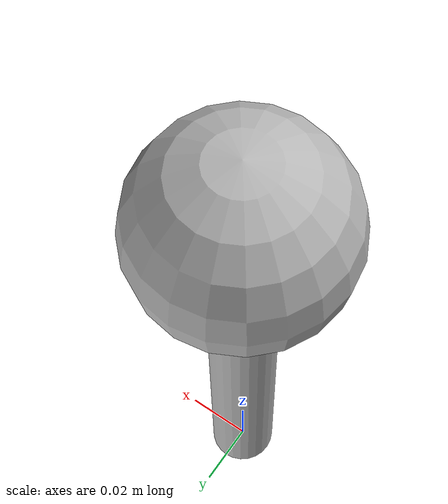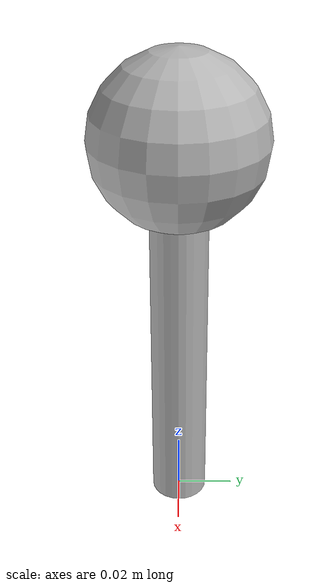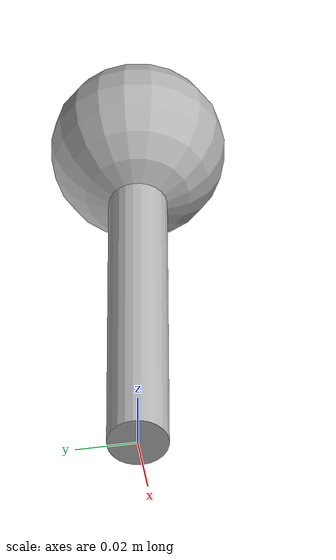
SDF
<?xml version="1.0"?>

<!--

  Meet the Bobs.

  Absolutely useless models that do nothing but
  sit there and act cool. Useful for constructing
  point objects to test the SONAR.

-->

<sdf version="1.6">
  <model name="bob">

    <static>true</static>

    <!-- The Shaft of the Bob. -->
    <link name="shaft">

      <pose>0 0 0.06 0 0 0</pose>

      <collision name="shaft_col">
        <geometry>
          <cylinder>
            <radius>0.01</radius>
            <length>0.12</length>
          </cylinder>
        </geometry>
      </collision>

      <visual name="shaft_vis">
        <geometry>
          <cylinder>
            <radius>0.01</radius>
            <length>0.12</length>
          </cylinder>
        </geometry>
      </visual>
    </link>

    <!-- The Ball of the Bob. -->
    <link name="ball">

      <pose>0 0 0.14 0 0 0</pose>

      <collision name="ball_col">
        <geometry>
          <sphere><radius>0.03</radius></sphere>
        </geometry>
      </collision>

      <visual name="ball_vis">
        <geometry>
          <sphere><radius>0.03</radius></sphere>
        </geometry>
      </visual>
    </link>

    <!-- Joint -->
    <joint name="joint" type="fixed">
      <parent>shaft</parent>
      <child>ball</child>
    </joint>

  </model>
</sdf>
